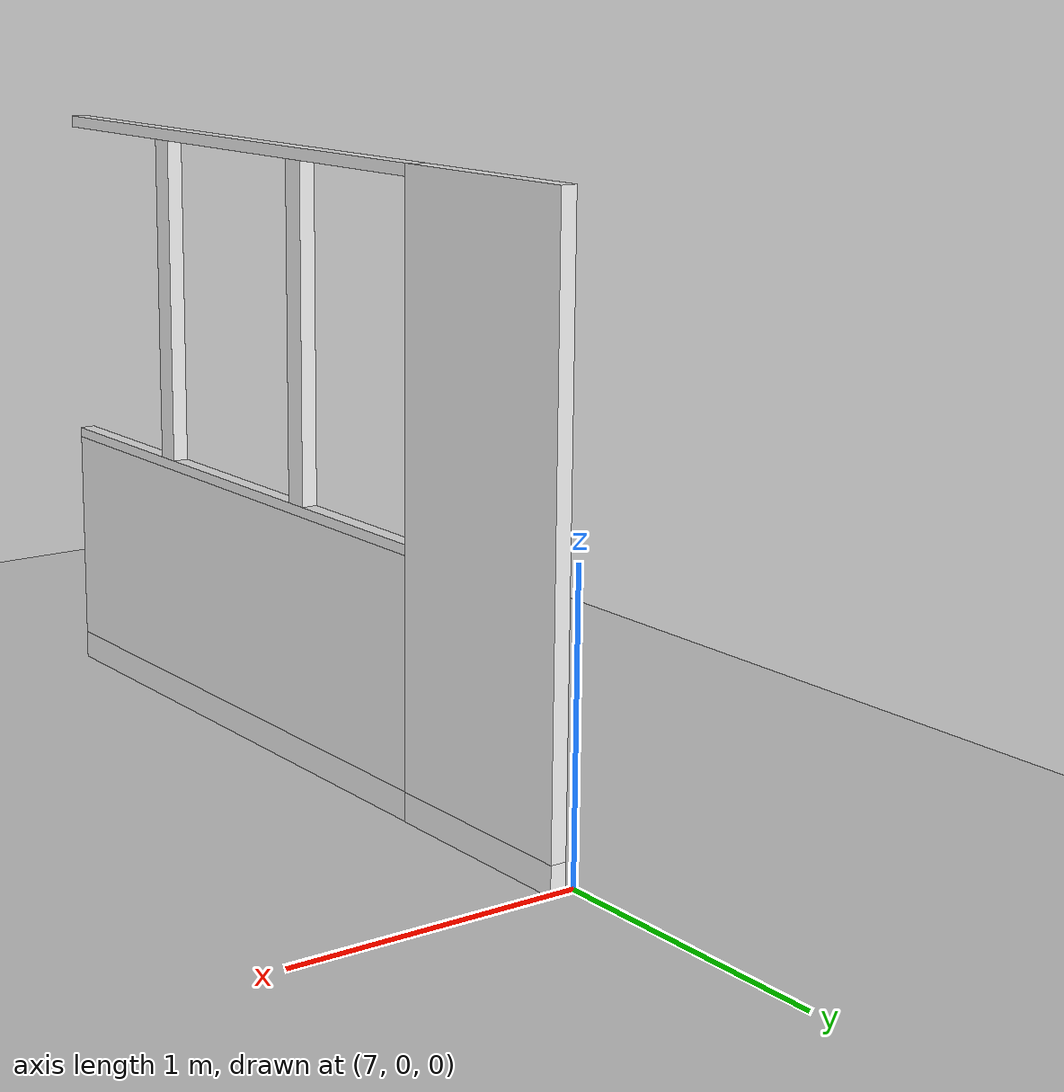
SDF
<sdf version="1.6">
 <world name="default">
  <model name="ground_plane">
   <static>1</static>
   <link name="link">
    <collision name="collision">
     <geometry><plane><normal>0 0 1</normal><size>100 100</size></plane></geometry>
     <surface><friction><ode><mu>100</mu><mu2>50</mu2></ode></friction></surface>
    </collision>
    <visual name="visual">
     <cast_shadows>0</cast_shadows>
     <geometry><plane><normal>0 0 1</normal><size>100 100</size></plane></geometry>
     <material>
      <script><uri>file://media/materials/scripts/gazebo.material</uri><name>Gazebo/Grey</name></script>
     </material>
    </visual>
   </link>
  </model>
  <model name="living_sideboard">
   <link name="link">
    <inertial>
     <mass>10</mass>
     <inertia><ixx>1</ixx><ixy>0</ixy><ixz>0</ixz><iyy>1</iyy><iyz>0</iyz><izz>1</izz></inertia>
    </inertial>
    <visual name="left_board">
     <pose>-0.23 0.01 0.3375 0 -0 0</pose>
     <geometry><box><size>0.42 0.02 0.495</size></box></geometry>
     <material>
      <script><uri>model://base_materials/wood/scripts/wood.material</uri><name>base_materials/wood</name></script>
     </material>
    </visual>
    <collision name="collision_left_board">
     <pose>-0.23 0.01 0.3375 0 -0 0</pose>
     <geometry><box><size>0.42 0.02 0.495</size></box></geometry>
    </collision>
    <visual name="back_board">
     <pose>-0.42 0.575 0.2925 0 -0 0</pose>
     <geometry><box><size>0.02 1.11 0.585</size></box></geometry>
     <material>
      <script><uri>model://base_materials/wood/scripts/wood.material</uri><name>base_materials/wood</name></script>
     </material>
    </visual>
    <collision name="collision_back_board">
     <pose>-0.42 0.575 0.2925 0 -0 0</pose>
     <geometry><box><size>0.02 1.11 0.585</size></box></geometry>
    </collision>
    <visual name="right_board">
     <pose>-0.23 1.14 0.3375 0 -0 0</pose>
     <geometry><box><size>0.42 0.02 0.495</size></box></geometry>
     <material>
      <script><uri>model://base_materials/wood/scripts/wood.material</uri><name>base_materials/wood</name></script>
     </material>
    </visual>
    <collision name="collision_right_board">
     <pose>-0.23 1.14 0.3375 0 -0 0</pose>
     <geometry><box><size>0.42 0.02 0.495</size></box></geometry>
    </collision>
    <visual name="center_vertical_board1">
     <pose>-0.23 0.74 0.3375 0 -0 0</pose>
     <geometry><box><size>0.42 0.02 0.495</size></box></geometry>
     <material>
      <script><uri>model://base_materials/wood/scripts/wood.material</uri><name>base_materials/wood</name></script>
     </material>
    </visual>
    <collision name="collision_center_vertical_board1">
     <pose>-0.23 0.74 0.3375 0 -0 0</pose>
     <geometry><box><size>0.42 0.02 0.495</size></box></geometry>
    </collision>
    <visual name="top_board">
     <pose>-0.22 0.575 0.6 0 -0 0</pose>
     <geometry><box><size>0.44 1.15 0.03</size></box></geometry>
     <material>
      <script><uri>model://base_materials/wood/scripts/wood.material</uri><name>base_materials/wood</name></script>
     </material>
    </visual>
    <collision name="collision_top_board">
     <pose>-0.22 0.575 0.6 0 -0 0</pose>
     <geometry><box><size>0.44 1.15 0.03</size></box></geometry>
    </collision>
    <visual name="bottom_board">
     <pose>-0.23 0.575 0.045 0 -0 0</pose>
     <geometry><box><size>0.42 1.15 0.09</size></box></geometry>
     <material>
      <script><uri>model://base_materials/wood/scripts/wood.material</uri><name>base_materials/wood</name></script>
     </material>
    </visual>
    <collision name="collision_bottom_board">
     <pose>-0.23 0.575 0.045 0 -0 0</pose>
     <geometry><box><size>0.42 1.15 0.09</size></box></geometry>
    </collision>
    <visual name="1st_shelf">
     <pose>-0.225 0.37 0.259 0 -0 0</pose>
     <geometry><box><size>0.36 0.72 0.018</size></box></geometry>
     <material>
      <script><uri>model://base_materials/wood/scripts/wood.material</uri><name>base_materials/wood</name></script>
     </material>
    </visual>
    <collision name="collision_1st_shelf">
     <pose>-0.225 0.37 0.259 0 -0 0</pose>
     <geometry><box><size>0.36 0.72 0.018</size></box></geometry>
    </collision>
    <visual name="2nd_shelf">
     <pose>-0.225 0.37 0.407 0 -0 0</pose>
     <geometry><box><size>0.36 0.72 0.018</size></box></geometry>
     <material>
      <script><uri>model://base_materials/wood/scripts/wood.material</uri><name>base_materials/wood</name></script>
     </material>
    </visual>
    <collision name="collision_2nd_shelf">
     <pose>-0.225 0.37 0.407 0 -0 0</pose>
     <geometry><box><size>0.36 0.72 0.018</size></box></geometry>
    </collision>
    <visual name="1st_drawer">
     <pose>-0.2025 0.95 0.52 0 -0 0</pose>
     <geometry><box><size>0.405 0.38 0.13</size></box></geometry>
     <material>
      <script><uri>model://base_materials/wood/scripts/wood.material</uri><name>base_materials/wood</name></script>
     </material>
    </visual>
    <collision name="collision_1st_drawer">
     <pose>-0.2025 0.95 0.52 0 -0 0</pose>
     <geometry><box><size>0.405 0.38 0.13</size></box></geometry>
    </collision>
    <visual name="1st_drawer_handle_l1">
     <pose>0.015 0.9015 0.535 3.14159 1.57079 3.14159</pose>
     <geometry><cylinder><radius>0.006</radius><length>0.03</length></cylinder></geometry>
     <material>
      <ambient>1 0.84314 0 1</ambient>
      <diffuse>1 0.84314 0 1</diffuse>
      <specular>0.1 0.1 0.1 1</specular>
     </material>
    </visual>
    <collision name="collision_1st_drawer_handle_l1">
     <pose>0.015 0.9015 0.535 3.14159 1.57079 3.14159</pose>
     <geometry><cylinder><radius>0.006</radius><length>0.03</length></cylinder></geometry>
    </collision>
    <visual name="1st_drawer_handle_l2">
     <pose>0.03 0.9015 0.535 0 -0 0</pose>
     <geometry><sphere><radius>0.006</radius></sphere></geometry>
     <material>
      <ambient>1 0.84314 0 1</ambient>
      <diffuse>1 0.84314 0 1</diffuse>
      <specular>0.1 0.1 0.1 1</specular>
     </material>
    </visual>
    <collision name="collision_1st_drawer_handle_l2">
     <pose>0.03 0.9015 0.535 0 -0 0</pose>
     <geometry><sphere><radius>0.006</radius></sphere></geometry>
    </collision>
    <visual name="1st_drawer_handle_r1">
     <pose>0.015 0.9985 0.535 3.14159 1.57079 3.14159</pose>
     <geometry><cylinder><radius>0.006</radius><length>0.03</length></cylinder></geometry>
     <material>
      <ambient>1 0.84314 0 1</ambient>
      <diffuse>1 0.84314 0 1</diffuse>
      <specular>0.1 0.1 0.1 1</specular>
     </material>
    </visual>
    <collision name="collision_1st_drawer_handle_r1">
     <pose>0.015 0.9985 0.535 3.14159 1.57079 3.14159</pose>
     <geometry><cylinder><radius>0.006</radius><length>0.03</length></cylinder></geometry>
    </collision>
    <visual name="1st_drawer_handle_r2">
     <pose>0.03 0.9985 0.535 0 -0 0</pose>
     <geometry><sphere><radius>0.006</radius></sphere></geometry>
     <material>
      <ambient>1 0.84314 0 1</ambient>
      <diffuse>1 0.84314 0 1</diffuse>
      <specular>0.1 0.1 0.1 1</specular>
     </material>
    </visual>
    <collision name="collision_1st_drawer_handle_r2">
     <pose>0.03 0.9985 0.535 0 -0 0</pose>
     <geometry><sphere><radius>0.006</radius></sphere></geometry>
    </collision>
    <visual name="1st_drawer_handle_center">
     <pose>0.03 0.95 0.535 1.5708 -0 0</pose>
     <geometry><cylinder><radius>0.006</radius><length>0.097</length></cylinder></geometry>
     <material>
      <script><uri>model://base_materials/wood/scripts/wood.material</uri><name>base_materials/wood</name></script>
     </material>
    </visual>
    <collision name="collision_1st_drawer_handle_center">
     <pose>0.03 0.95 0.535 1.5708 -0 0</pose>
     <geometry><cylinder><radius>0.006</radius><length>0.097</length></cylinder></geometry>
    </collision>
    <visual name="2nd_drawer">
     <pose>-0.2025 0.95 0.37 0 -0 0</pose>
     <geometry><box><size>0.405 0.38 0.17</size></box></geometry>
     <material>
      <script><uri>model://base_materials/wood/scripts/wood.material</uri><name>base_materials/wood</name></script>
     </material>
    </visual>
    <collision name="collision_2nd_drawer">
     <pose>-0.2025 0.95 0.37 0 -0 0</pose>
     <geometry><box><size>0.405 0.38 0.17</size></box></geometry>
    </collision>
    <visual name="2nd_drawer_handle_l1">
     <pose>0.015 0.9015 0.405 3.14159 1.57079 3.14159</pose>
     <geometry><cylinder><radius>0.006</radius><length>0.03</length></cylinder></geometry>
     <material>
      <ambient>1 0.84314 0 1</ambient>
      <diffuse>1 0.84314 0 1</diffuse>
      <specular>0.1 0.1 0.1 1</specular>
     </material>
    </visual>
    <collision name="collision_2nd_drawer_handle_l1">
     <pose>0.015 0.9015 0.405 3.14159 1.57079 3.14159</pose>
     <geometry><cylinder><radius>0.006</radius><length>0.03</length></cylinder></geometry>
    </collision>
    <visual name="2nd_drawer_handle_l2">
     <pose>0.03 0.9015 0.405 0 -0 0</pose>
     <geometry><sphere><radius>0.006</radius></sphere></geometry>
     <material>
      <ambient>1 0.84314 0 1</ambient>
      <diffuse>1 0.84314 0 1</diffuse>
      <specular>0.1 0.1 0.1 1</specular>
     </material>
    </visual>
    <collision name="collision_2nd_drawer_handle_l2">
     <pose>0.03 0.9015 0.405 0 -0 0</pose>
     <geometry><sphere><radius>0.006</radius></sphere></geometry>
    </collision>
    <visual name="2nd_drawer_handle_r1">
     <pose>0.015 0.9985 0.405 3.14159 1.57079 3.14159</pose>
     <geometry><cylinder><radius>0.006</radius><length>0.03</length></cylinder></geometry>
     <material>
      <ambient>1 0.84314 0 1</ambient>
      <diffuse>1 0.84314 0 1</diffuse>
      <specular>0.1 0.1 0.1 1</specular>
     </material>
    </visual>
    <collision name="collision_2nd_drawer_handle_r1">
     <pose>0.015 0.9985 0.405 3.14159 1.57079 3.14159</pose>
     <geometry><cylinder><radius>0.006</radius><length>0.03</length></cylinder></geometry>
    </collision>
    <visual name="2nd_drawer_handle_r2">
     <pose>0.03 0.9985 0.405 0 -0 0</pose>
     <geometry><sphere><radius>0.006</radius></sphere></geometry>
     <material>
      <ambient>1 0.84314 0 1</ambient>
      <diffuse>1 0.84314 0 1</diffuse>
      <specular>0.1 0.1 0.1 1</specular>
     </material>
    </visual>
    <collision name="collision_2nd_drawer_handle_r2">
     <pose>0.03 0.9985 0.405 0 -0 0</pose>
     <geometry><sphere><radius>0.006</radius></sphere></geometry>
    </collision>
    <visual name="2nd_drawer_handle_center">
     <pose>0.03 0.95 0.405 1.5708 -0 0</pose>
     <geometry><cylinder><radius>0.006</radius><length>0.097</length></cylinder></geometry>
     <material>
      <script><uri>model://base_materials/wood/scripts/wood.material</uri><name>base_materials/wood</name></script>
     </material>
    </visual>
    <collision name="collision_2nd_drawer_handle_center">
     <pose>0.03 0.95 0.405 1.5708 -0 0</pose>
     <geometry><cylinder><radius>0.006</radius><length>0.097</length></cylinder></geometry>
    </collision>
    <visual name="3rd_drawer">
     <pose>-0.2025 0.95 0.18 0 -0 0</pose>
     <geometry><box><size>0.405 0.38 0.21</size></box></geometry>
     <material>
      <script><uri>model://base_materials/wood/scripts/wood.material</uri><name>base_materials/wood</name></script>
     </material>
    </visual>
    <collision name="collision_3rd_drawer">
     <pose>-0.2025 0.95 0.18 0 -0 0</pose>
     <geometry><box><size>0.405 0.38 0.21</size></box></geometry>
    </collision>
    <visual name="3rd_drawer_handle_l1">
     <pose>0.015 0.9015 0.235 3.14159 1.57079 3.14159</pose>
     <geometry><cylinder><radius>0.006</radius><length>0.03</length></cylinder></geometry>
     <material>
      <ambient>1 0.84314 0 1</ambient>
      <diffuse>1 0.84314 0 1</diffuse>
      <specular>0.1 0.1 0.1 1</specular>
     </material>
    </visual>
    <collision name="collision_3rd_drawer_handle_l1">
     <pose>0.015 0.9015 0.235 3.14159 1.57079 3.14159</pose>
     <geometry><cylinder><radius>0.006</radius><length>0.03</length></cylinder></geometry>
    </collision>
    <visual name="3rd_drawer_handle_l2">
     <pose>0.03 0.9015 0.235 0 -0 0</pose>
     <geometry><sphere><radius>0.006</radius></sphere></geometry>
     <material>
      <ambient>1 0.84314 0 1</ambient>
      <diffuse>1 0.84314 0 1</diffuse>
      <specular>0.1 0.1 0.1 1</specular>
     </material>
    </visual>
    <collision name="collision_3rd_drawer_handle_l2">
     <pose>0.03 0.9015 0.235 0 -0 0</pose>
     <geometry><sphere><radius>0.006</radius></sphere></geometry>
    </collision>
    <visual name="3rd_drawer_handle_r1">
     <pose>0.015 0.9985 0.235 3.14159 1.57079 3.14159</pose>
     <geometry><cylinder><radius>0.006</radius><length>0.03</length></cylinder></geometry>
     <material>
      <ambient>1 0.84314 0 1</ambient>
      <diffuse>1 0.84314 0 1</diffuse>
      <specular>0.1 0.1 0.1 1</specular>
     </material>
    </visual>
    <collision name="collision_3rd_drawer_handle_r1">
     <pose>0.015 0.9985 0.235 3.14159 1.57079 3.14159</pose>
     <geometry><cylinder><radius>0.006</radius><length>0.03</length></cylinder></geometry>
    </collision>
    <visual name="3rd_drawer_handle_r2">
     <pose>0.03 0.9985 0.235 0 -0 0</pose>
     <geometry><sphere><radius>0.006</radius></sphere></geometry>
     <material>
      <ambient>1 0.84314 0 1</ambient>
      <diffuse>1 0.84314 0 1</diffuse>
      <specular>0.1 0.1 0.1 1</specular>
     </material>
    </visual>
    <collision name="collision_3rd_drawer_handle_r2">
     <pose>0.03 0.9985 0.235 0 -0 0</pose>
     <geometry><sphere><radius>0.006</radius></sphere></geometry>
    </collision>
    <visual name="3rd_drawer_handle_center">
     <pose>0.03 0.95 0.235 1.5708 -0 0</pose>
     <geometry><cylinder><radius>0.006</radius><length>0.097</length></cylinder></geometry>
     <material>
      <script><uri>model://base_materials/wood/scripts/wood.material</uri><name>base_materials/wood</name></script>
     </material>
    </visual>
    <collision name="collision_3rd_drawer_handle_center">
     <pose>0.03 0.95 0.235 1.5708 -0 0</pose>
     <geometry><cylinder><radius>0.006</radius><length>0.097</length></cylinder></geometry>
    </collision>
    <visual name="left_door_left_frame">
     <pose>-0.01 0.025 0.3275 0 -0 0</pose>
     <geometry><box><size>0.02 0.05 0.405</size></box></geometry>
     <material>
      <script><uri>model://base_materials/wood/scripts/wood.material</uri><name>base_materials/wood</name></script>
     </material>
    </visual>
    <collision name="collision_left_door_left_frame">
     <pose>-0.01 0.025 0.3275 0 -0 0</pose>
     <geometry><box><size>0.02 0.05 0.405</size></box></geometry>
    </collision>
    <visual name="left_door_right_frame">
     <pose>-0.01 0.355 0.3275 0 -0 0</pose>
     <geometry><box><size>0.02 0.05 0.405</size></box></geometry>
     <material>
      <script><uri>model://base_materials/wood/scripts/wood.material</uri><name>base_materials/wood</name></script>
     </material>
    </visual>
    <collision name="collision_left_door_right_frame">
     <pose>-0.01 0.355 0.3275 0 -0 0</pose>
     <geometry><box><size>0.02 0.05 0.405</size></box></geometry>
    </collision>
    <visual name="left_door_handle_top1">
     <pose>0.015 0.355 0.4475 3.14159 1.57079 3.14159</pose>
     <geometry><cylinder><radius>0.006</radius><length>0.03</length></cylinder></geometry>
     <material>
      <ambient>1 0.84314 0 1</ambient>
      <diffuse>1 0.84314 0 1</diffuse>
      <specular>0.1 0.1 0.1 1</specular>
     </material>
    </visual>
    <collision name="collision_left_door_handle_top1">
     <pose>0.015 0.355 0.4475 3.14159 1.57079 3.14159</pose>
     <geometry><cylinder><radius>0.006</radius><length>0.03</length></cylinder></geometry>
    </collision>
    <visual name="left_door_handle_top2">
     <pose>0.03 0.355 0.4475 0 -0 0</pose>
     <geometry><sphere><radius>0.006</radius></sphere></geometry>
     <material>
      <ambient>1 0.84314 0 1</ambient>
      <diffuse>1 0.84314 0 1</diffuse>
      <specular>0.1 0.1 0.1 1</specular>
     </material>
    </visual>
    <collision name="collision_left_door_handle_top2">
     <pose>0.03 0.355 0.4475 0 -0 0</pose>
     <geometry><sphere><radius>0.006</radius></sphere></geometry>
    </collision>
    <visual name="left_door_handle_bottom1">
     <pose>0.015 0.355 0.3505 3.14159 1.57079 3.14159</pose>
     <geometry><cylinder><radius>0.006</radius><length>0.03</length></cylinder></geometry>
     <material>
      <ambient>1 0.84314 0 1</ambient>
      <diffuse>1 0.84314 0 1</diffuse>
      <specular>0.1 0.1 0.1 1</specular>
     </material>
    </visual>
    <collision name="collision_left_door_handle_bottom1">
     <pose>0.015 0.355 0.3505 3.14159 1.57079 3.14159</pose>
     <geometry><cylinder><radius>0.006</radius><length>0.03</length></cylinder></geometry>
    </collision>
    <visual name="left_door_handle_bottom2">
     <pose>0.03 0.355 0.3505 0 -0 0</pose>
     <geometry><sphere><radius>0.006</radius></sphere></geometry>
     <material>
      <ambient>1 0.84314 0 1</ambient>
      <diffuse>1 0.84314 0 1</diffuse>
      <specular>0.1 0.1 0.1 1</specular>
     </material>
    </visual>
    <collision name="collision_left_door_handle_bottom2">
     <pose>0.03 0.355 0.3505 0 -0 0</pose>
     <geometry><sphere><radius>0.006</radius></sphere></geometry>
    </collision>
    <visual name="left_door_handle_center">
     <pose>0.03 0.355 0.399 0 -0 0</pose>
     <geometry><cylinder><radius>0.006</radius><length>0.097</length></cylinder></geometry>
     <material>
      <script><uri>model://base_materials/wood/scripts/wood.material</uri><name>base_materials/wood</name></script>
     </material>
    </visual>
    <collision name="collision_left_door_handle_center">
     <pose>0.03 0.355 0.399 0 -0 0</pose>
     <geometry><cylinder><radius>0.006</radius><length>0.097</length></cylinder></geometry>
    </collision>
    <visual name="left_door_top_frame">
     <pose>-0.01 0.19 0.5575 0 -0 0</pose>
     <geometry><box><size>0.02 0.38 0.055</size></box></geometry>
     <material>
      <script><uri>model://base_materials/wood/scripts/wood.material</uri><name>base_materials/wood</name></script>
     </material>
    </visual>
    <collision name="collision_left_door_top_frame">
     <pose>-0.01 0.19 0.5575 0 -0 0</pose>
     <geometry><box><size>0.02 0.38 0.055</size></box></geometry>
    </collision>
    <visual name="left_door_bottom_frame">
     <pose>-0.01 0.19 0.1 0 -0 0</pose>
     <geometry><box><size>0.02 0.38 0.05</size></box></geometry>
     <material>
      <script><uri>model://base_materials/wood/scripts/wood.material</uri><name>base_materials/wood</name></script>
     </material>
    </visual>
    <collision name="collision_left_door_bottom_frame">
     <pose>-0.01 0.19 0.1 0 -0 0</pose>
     <geometry><box><size>0.02 0.38 0.05</size></box></geometry>
    </collision>
    <visual name="right_door_left_frame">
     <pose>-0.01 0.405 0.3275 0 -0 0</pose>
     <geometry><box><size>0.02 0.05 0.405</size></box></geometry>
     <material>
      <script><uri>model://base_materials/wood/scripts/wood.material</uri><name>base_materials/wood</name></script>
     </material>
    </visual>
    <collision name="collision_right_door_left_frame">
     <pose>-0.01 0.405 0.3275 0 -0 0</pose>
     <geometry><box><size>0.02 0.05 0.405</size></box></geometry>
    </collision>
    <visual name="right_door_right_frame">
     <pose>-0.01 0.735 0.3275 0 -0 0</pose>
     <geometry><box><size>0.02 0.05 0.405</size></box></geometry>
     <material>
      <script><uri>model://base_materials/wood/scripts/wood.material</uri><name>base_materials/wood</name></script>
     </material>
    </visual>
    <collision name="collision_right_door_right_frame">
     <pose>-0.01 0.735 0.3275 0 -0 0</pose>
     <geometry><box><size>0.02 0.05 0.405</size></box></geometry>
    </collision>
    <visual name="right_door_top_frame">
     <pose>-0.01 0.57 0.5575 0 -0 0</pose>
     <geometry><box><size>0.02 0.38 0.055</size></box></geometry>
     <material>
      <script><uri>model://base_materials/wood/scripts/wood.material</uri><name>base_materials/wood</name></script>
     </material>
    </visual>
    <collision name="collision_right_door_top_frame">
     <pose>-0.01 0.57 0.5575 0 -0 0</pose>
     <geometry><box><size>0.02 0.38 0.055</size></box></geometry>
    </collision>
    <visual name="right_door_bottom_frame">
     <pose>-0.01 0.57 0.1 0 -0 0</pose>
     <geometry><box><size>0.02 0.38 0.05</size></box></geometry>
     <material>
      <script><uri>model://base_materials/wood/scripts/wood.material</uri><name>base_materials/wood</name></script>
     </material>
    </visual>
    <collision name="collision_right_door_bottom_frame">
     <pose>-0.01 0.57 0.1 0 -0 0</pose>
     <geometry><box><size>0.02 0.38 0.05</size></box></geometry>
    </collision>
    <visual name="right_door_handle_top1">
     <pose>0.015 0.405 0.4475 3.14159 1.57079 3.14159</pose>
     <geometry><cylinder><radius>0.006</radius><length>0.03</length></cylinder></geometry>
     <material>
      <ambient>1 0.84314 0 1</ambient>
      <diffuse>1 0.84314 0 1</diffuse>
      <specular>0.1 0.1 0.1 1</specular>
     </material>
    </visual>
    <collision name="collision_right_door_handle_top1">
     <pose>0.015 0.405 0.4475 3.14159 1.57079 3.14159</pose>
     <geometry><cylinder><radius>0.006</radius><length>0.03</length></cylinder></geometry>
    </collision>
    <visual name="right_door_handle_top2">
     <pose>0.03 0.405 0.4475 0 -0 0</pose>
     <geometry><sphere><radius>0.006</radius></sphere></geometry>
     <material>
      <ambient>1 0.84314 0 1</ambient>
      <diffuse>1 0.84314 0 1</diffuse>
      <specular>0.1 0.1 0.1 1</specular>
     </material>
    </visual>
    <collision name="collision_right_door_handle_top2">
     <pose>0.03 0.405 0.4475 0 -0 0</pose>
     <geometry><sphere><radius>0.006</radius></sphere></geometry>
    </collision>
    <visual name="right_door_handle_bottom1">
     <pose>0.015 0.405 0.3505 3.14159 1.57079 3.14159</pose>
     <geometry><cylinder><radius>0.006</radius><length>0.03</length></cylinder></geometry>
     <material>
      <ambient>1 0.84314 0 1</ambient>
      <diffuse>1 0.84314 0 1</diffuse>
      <specular>0.1 0.1 0.1 1</specular>
     </material>
    </visual>
    <collision name="collision_right_door_handle_bottom1">
     <pose>0.015 0.405 0.3505 3.14159 1.57079 3.14159</pose>
     <geometry><cylinder><radius>0.006</radius><length>0.03</length></cylinder></geometry>
    </collision>
    <visual name="right_door_handle_bottom2">
     <pose>0.03 0.405 0.3505 0 -0 0</pose>
     <geometry><sphere><radius>0.006</radius></sphere></geometry>
     <material>
      <ambient>1 0.84314 0 1</ambient>
      <diffuse>1 0.84314 0 1</diffuse>
      <specular>0.1 0.1 0.1 1</specular>
     </material>
    </visual>
    <collision name="collision_right_door_handle_bottom2">
     <pose>0.03 0.405 0.3505 0 -0 0</pose>
     <geometry><sphere><radius>0.006</radius></sphere></geometry>
    </collision>
    <visual name="right_door_handle_center">
     <pose>0.03 0.405 0.399 0 -0 0</pose>
     <geometry><cylinder><radius>0.006</radius><length>0.097</length></cylinder></geometry>
     <material>
      <script><uri>model://base_materials/wood/scripts/wood.material</uri><name>base_materials/wood</name></script>
     </material>
    </visual>
    <collision name="collision_right_door_handle_center">
     <pose>0.03 0.4 0.399 0 -0 0</pose>
     <geometry><cylinder><radius>0.006</radius><length>0.097</length></cylinder></geometry>
    </collision>
    <velocity_decay><linear>0</linear><angular>0</angular></velocity_decay>
   </link>
   <static>1</static>
   <pose>6.55431 -1.39864 0 0 0 -3.12984</pose>
  </model>
  <model name="half_glass_wall_bedroom">
   <link name="link">
    <pose>0.152727 0.374003 0 0 -0 0</pose>
    <inertial>
     <mass>123.435</mass>
     <inertia>
      <ixx>50.8426</ixx>
      <ixy>0</ixy>
      <ixz>0</ixz>
      <iyy>0.0475739</iyy>
      <iyz>0</iyz>
      <izz>50.8573</izz>
     </inertia>
    </inertial>
    <velocity_decay><linear>0</linear><angular>0</angular></velocity_decay>
    <visual name="bottom_frame">
     <pose>0 0 0.05 0 -0 0</pose>
     <geometry><box><size>0.055 2.22288 0.1</size></box></geometry>
     <material>
      <script><uri>model://base_materials/color/scripts</uri><name>hsr_color/white</name></script>
      <ambient>1 1 1 1</ambient>
      <diffuse>0.5 0.5 0.5 1</diffuse>
      <specular>0 0 0 1</specular>
      <emissive>0 0 0 1</emissive>
     </material>
    </visual>
    <visual name="center_frame">
     <pose>0 0 0.8925 0 -0 0</pose>
     <geometry><box><size>0.055 2.22288 0.035</size></box></geometry>
     <material>
      <script><uri>model://base_materials/color/scripts</uri><name>hsr_color/white</name></script>
      <ambient>1 1 1 1</ambient>
      <diffuse>0.5 0.5 0.5 1</diffuse>
      <specular>0 0 0 1</specular>
      <emissive>0 0 0 1</emissive>
     </material>
    </visual>
    <visual name="wall">
     <pose>0 0 0.4875 0 -0 0</pose>
     <geometry><box><size>0.055 2.22288 0.775</size></box></geometry>
     <material>
      <script>
       <uri>model://base_materials/wall/scripts</uri>
       <uri>model://base_materials/wall/textures</uri>
       <name>wall/white_noise</name>
      </script>
      <ambient>1 1 1 1</ambient>
      <diffuse>0.5 0.5 0.5 1</diffuse>
      <specular>0 0 0 1</specular>
      <emissive>0 0 0 1</emissive>
     </material>
    </visual>
    <visual name="left_frame">
     <pose>0 -0.4325 1.48 0 -0 0</pose>
     <geometry><box><size>0.055 0.085833 1.14</size></box></geometry>
     <material>
      <script><uri>model://base_materials/color/scripts</uri><name>hsr_color/white</name></script>
      <ambient>1 1 1 1</ambient>
      <diffuse>0.5 0.5 0.5 1</diffuse>
      <specular>0 0 0 1</specular>
      <emissive>0 0 0 1</emissive>
     </material>
    </visual>
    <visual name="right_frame">
     <pose>0 0.4325 1.48 0 -0 0</pose>
     <geometry><box><size>0.055 0.085833 1.14</size></box></geometry>
     <material>
      <script><uri>model://base_materials/color/scripts</uri><name>hsr_color/white</name></script>
      <ambient>1 1 1 1</ambient>
      <diffuse>0.5 0.5 0.5 1</diffuse>
      <specular>0 0 0 1</specular>
      <emissive>0 0 0 1</emissive>
     </material>
    </visual>
    <visual name="top_frame">
     <pose>0 0 2.07 0 -0 0</pose>
     <geometry><box><size>0.055 2.22288 0.04</size></box></geometry>
     <material>
      <script><uri>model://base_materials/color/scripts</uri><name>hsr_color/white</name></script>
      <ambient>1 1 1 1</ambient>
      <diffuse>0.5 0.5 0.5 1</diffuse>
      <specular>0 0 0 1</specular>
      <emissive>0 0 0 1</emissive>
     </material>
    </visual>
    <collision name="collision_bottom_frame">
     <pose>0 0 0.05 0 -0 0</pose>
     <geometry><box><size>0.055 2.22288 0.1</size></box></geometry>
     <surface>
      <friction>
       <ode><mu>1</mu><mu2>1</mu2><fdir1>0 0 0</fdir1><slip1>0</slip1><slip2>0</slip2></ode>
       <torsional>
        <coefficient>1</coefficient>
        <patch_radius>0</patch_radius>
        <surface_radius>0</surface_radius>
        <use_patch_radius>1</use_patch_radius>
        <ode><slip>0</slip></ode>
       </torsional>
      </friction>
      <bounce><restitution_coefficient>0</restitution_coefficient><threshold>1e+06</threshold></bounce>
      <contact>
       <collide_without_contact>0</collide_without_contact>
       <collide_without_contact_bitmask>1</collide_without_contact_bitmask>
       <collide_bitmask>1</collide_bitmask>
       <ode>
        <soft_cfm>0</soft_cfm>
        <soft_erp>0.2</soft_erp>
        <kp>1e+13</kp>
        <kd>1</kd>
        <max_vel>0.01</max_vel>
        <min_depth>0</min_depth>
       </ode>
       <bullet>
        <split_impulse>1</split_impulse>
        <split_impulse_penetration_threshold>-0.01</split_impulse_penetration_threshold>
        <soft_cfm>0</soft_cfm>
        <soft_erp>0.2</soft_erp>
        <kp>1e+13</kp>
        <kd>1</kd>
       </bullet>
      </contact>
     </surface>
    </collision>
    <collision name="collision_wall">
     <pose>0 0 0.4875 0 -0 0</pose>
     <geometry><box><size>0.055 2.22288 0.775</size></box></geometry>
     <surface>
      <friction>
       <ode><mu>1</mu><mu2>1</mu2><fdir1>0 0 0</fdir1><slip1>0</slip1><slip2>0</slip2></ode>
       <torsional>
        <coefficient>1</coefficient>
        <patch_radius>0</patch_radius>
        <surface_radius>0</surface_radius>
        <use_patch_radius>1</use_patch_radius>
        <ode><slip>0</slip></ode>
       </torsional>
      </friction>
      <bounce><restitution_coefficient>0</restitution_coefficient><threshold>1e+06</threshold></bounce>
      <contact>
       <collide_without_contact>0</collide_without_contact>
       <collide_without_contact_bitmask>1</collide_without_contact_bitmask>
       <collide_bitmask>1</collide_bitmask>
       <ode>
        <soft_cfm>0</soft_cfm>
        <soft_erp>0.2</soft_erp>
        <kp>1e+13</kp>
        <kd>1</kd>
        <max_vel>0.01</max_vel>
        <min_depth>0</min_depth>
       </ode>
       <bullet>
        <split_impulse>1</split_impulse>
        <split_impulse_penetration_threshold>-0.01</split_impulse_penetration_threshold>
        <soft_cfm>0</soft_cfm>
        <soft_erp>0.2</soft_erp>
        <kp>1e+13</kp>
        <kd>1</kd>
       </bullet>
      </contact>
     </surface>
    </collision>
    <collision name="collision_center_frame">
     <pose>0 0 0.8925 0 -0 0</pose>
     <geometry><box><size>0.055 2.22288 0.035</size></box></geometry>
     <surface>
      <friction>
       <ode><mu>1</mu><mu2>1</mu2><fdir1>0 0 0</fdir1><slip1>0</slip1><slip2>0</slip2></ode>
       <torsional>
        <coefficient>1</coefficient>
        <patch_radius>0</patch_radius>
        <surface_radius>0</surface_radius>
        <use_patch_radius>1</use_patch_radius>
        <ode><slip>0</slip></ode>
       </torsional>
      </friction>
      <bounce><restitution_coefficient>0</restitution_coefficient><threshold>1e+06</threshold></bounce>
      <contact>
       <collide_without_contact>0</collide_without_contact>
       <collide_without_contact_bitmask>1</collide_without_contact_bitmask>
       <collide_bitmask>1</collide_bitmask>
       <ode>
        <soft_cfm>0</soft_cfm>
        <soft_erp>0.2</soft_erp>
        <kp>1e+13</kp>
        <kd>1</kd>
        <max_vel>0.01</max_vel>
        <min_depth>0</min_depth>
       </ode>
       <bullet>
        <split_impulse>1</split_impulse>
        <split_impulse_penetration_threshold>-0.01</split_impulse_penetration_threshold>
        <soft_cfm>0</soft_cfm>
        <soft_erp>0.2</soft_erp>
        <kp>1e+13</kp>
        <kd>1</kd>
       </bullet>
      </contact>
     </surface>
    </collision>
    <collision name="collision_right_frame">
     <pose>0 0.4325 1.48 0 -0 0</pose>
     <geometry><box><size>0.055 0.085833 1.14</size></box></geometry>
     <surface>
      <friction>
       <ode><mu>1</mu><mu2>1</mu2><fdir1>0 0 0</fdir1><slip1>0</slip1><slip2>0</slip2></ode>
       <torsional>
        <coefficient>1</coefficient>
        <patch_radius>0</patch_radius>
        <surface_radius>0</surface_radius>
        <use_patch_radius>1</use_patch_radius>
        <ode><slip>0</slip></ode>
       </torsional>
      </friction>
      <bounce><restitution_coefficient>0</restitution_coefficient><threshold>1e+06</threshold></bounce>
      <contact>
       <collide_without_contact>0</collide_without_contact>
       <collide_without_contact_bitmask>1</collide_without_contact_bitmask>
       <collide_bitmask>1</collide_bitmask>
       <ode>
        <soft_cfm>0</soft_cfm>
        <soft_erp>0.2</soft_erp>
        <kp>1e+13</kp>
        <kd>1</kd>
        <max_vel>0.01</max_vel>
        <min_depth>0</min_depth>
       </ode>
       <bullet>
        <split_impulse>1</split_impulse>
        <split_impulse_penetration_threshold>-0.01</split_impulse_penetration_threshold>
        <soft_cfm>0</soft_cfm>
        <soft_erp>0.2</soft_erp>
        <kp>1e+13</kp>
        <kd>1</kd>
       </bullet>
      </contact>
     </surface>
    </collision>
    <collision name="collision_left_frame">
     <pose>0 -0.4325 1.48 0 -0 0</pose>
     <geometry><box><size>0.055 0.085833 1.14</size></box></geometry>
     <surface>
      <friction>
       <ode><mu>1</mu><mu2>1</mu2><fdir1>0 0 0</fdir1><slip1>0</slip1><slip2>0</slip2></ode>
       <torsional>
        <coefficient>1</coefficient>
        <patch_radius>0</patch_radius>
        <surface_radius>0</surface_radius>
        <use_patch_radius>1</use_patch_radius>
        <ode><slip>0</slip></ode>
       </torsional>
      </friction>
      <bounce><restitution_coefficient>0</restitution_coefficient><threshold>1e+06</threshold></bounce>
      <contact>
       <collide_without_contact>0</collide_without_contact>
       <collide_without_contact_bitmask>1</collide_without_contact_bitmask>
       <collide_bitmask>1</collide_bitmask>
       <ode>
        <soft_cfm>0</soft_cfm>
        <soft_erp>0.2</soft_erp>
        <kp>1e+13</kp>
        <kd>1</kd>
        <max_vel>0.01</max_vel>
        <min_depth>0</min_depth>
       </ode>
       <bullet>
        <split_impulse>1</split_impulse>
        <split_impulse_penetration_threshold>-0.01</split_impulse_penetration_threshold>
        <soft_cfm>0</soft_cfm>
        <soft_erp>0.2</soft_erp>
        <kp>1e+13</kp>
        <kd>1</kd>
       </bullet>
      </contact>
     </surface>
    </collision>
    <collision name="collision_top_frame">
     <pose>0 0 2.07 0 -0 0</pose>
     <geometry><box><size>0.055 2.22288 0.04</size></box></geometry>
     <surface>
      <friction>
       <ode><mu>1</mu><mu2>1</mu2><fdir1>0 0 0</fdir1><slip1>0</slip1><slip2>0</slip2></ode>
       <torsional>
        <coefficient>1</coefficient>
        <patch_radius>0</patch_radius>
        <surface_radius>0</surface_radius>
        <use_patch_radius>1</use_patch_radius>
        <ode><slip>0</slip></ode>
       </torsional>
      </friction>
      <bounce><restitution_coefficient>0</restitution_coefficient><threshold>1e+06</threshold></bounce>
      <contact>
       <collide_without_contact>0</collide_without_contact>
       <collide_without_contact_bitmask>1</collide_without_contact_bitmask>
       <collide_bitmask>1</collide_bitmask>
       <ode>
        <soft_cfm>0</soft_cfm>
        <soft_erp>0.2</soft_erp>
        <kp>1e+13</kp>
        <kd>1</kd>
        <max_vel>0.01</max_vel>
        <min_depth>0</min_depth>
       </ode>
       <bullet>
        <split_impulse>1</split_impulse>
        <split_impulse_penetration_threshold>-0.01</split_impulse_penetration_threshold>
        <soft_cfm>0</soft_cfm>
        <soft_erp>0.2</soft_erp>
        <kp>1e+13</kp>
        <kd>1</kd>
       </bullet>
      </contact>
     </surface>
    </collision>
   </link>
   <static>1</static>
   <pose>6.91192 -2.19847 0 0 -0 0</pose>
  </model>
  <model name="full_wall_55_1300_2090_0_0">
   <link name="link">
    <pose>0 0.127869 0 0 -0 0</pose>
    <inertial>
     <mass>34.4639</mass>
     <inertia><ixx>13.0244</ixx><ixy>0</ixy><ixz>0</ixz><iyy>11.382</iyy><iyz>0</iyz><izz>1.65976</izz></inertia>
    </inertial>
    <velocity_decay><linear>0</linear><angular>0</angular></velocity_decay>
    <visual name="wall">
     <pose>0 0 1.095 0 -0 0</pose>
     <geometry><box><size>0.055 0.758213 1.99</size></box></geometry>
     <material>
      <script>
       <uri>model://base_materials/wall/scripts</uri>
       <uri>model://base_materials/wall/textures</uri>
       <name>wall/white_noise</name>
      </script>
      <ambient>1 1 1 1</ambient>
      <diffuse>0.5 0.5 0.5 1</diffuse>
      <specular>0 0 0 1</specular>
      <emissive>0 0 0 1</emissive>
     </material>
    </visual>
    <visual name="bottom_frame">
     <pose>0 0 0.05 0 -0 0</pose>
     <geometry><box><size>0.055 0.758213 0.1</size></box></geometry>
     <material>
      <script><uri>model://base_materials/color/scripts</uri><name>hsr_color/white</name></script>
      <ambient>1 1 1 1</ambient>
      <diffuse>0.5 0.5 0.5 1</diffuse>
      <specular>0 0 0 1</specular>
      <emissive>0 0 0 1</emissive>
     </material>
    </visual>
    <collision name="collision_bottom_frame">
     <pose>0 0 0.05 0 -0 0</pose>
     <geometry><box><size>0.055 0.758213 0.1</size></box></geometry>
     <surface>
      <friction>
       <ode><mu>1</mu><mu2>1</mu2><fdir1>0 0 0</fdir1><slip1>0</slip1><slip2>0</slip2></ode>
       <torsional>
        <coefficient>1</coefficient>
        <patch_radius>0</patch_radius>
        <surface_radius>0</surface_radius>
        <use_patch_radius>1</use_patch_radius>
        <ode><slip>0</slip></ode>
       </torsional>
      </friction>
      <bounce><restitution_coefficient>0</restitution_coefficient><threshold>1e+06</threshold></bounce>
      <contact>
       <collide_without_contact>0</collide_without_contact>
       <collide_without_contact_bitmask>1</collide_without_contact_bitmask>
       <collide_bitmask>1</collide_bitmask>
       <ode>
        <soft_cfm>0</soft_cfm>
        <soft_erp>0.2</soft_erp>
        <kp>1e+13</kp>
        <kd>1</kd>
        <max_vel>0.01</max_vel>
        <min_depth>0</min_depth>
       </ode>
       <bullet>
        <split_impulse>1</split_impulse>
        <split_impulse_penetration_threshold>-0.01</split_impulse_penetration_threshold>
        <soft_cfm>0</soft_cfm>
        <soft_erp>0.2</soft_erp>
        <kp>1e+13</kp>
        <kd>1</kd>
       </bullet>
      </contact>
     </surface>
    </collision>
    <collision name="collision_wall">
     <pose>0 0 1.095 0 -0 0</pose>
     <geometry><box><size>0.055 0.758213 1.99</size></box></geometry>
     <surface>
      <friction>
       <ode><mu>1</mu><mu2>1</mu2><fdir1>0 0 0</fdir1><slip1>0</slip1><slip2>0</slip2></ode>
       <torsional>
        <coefficient>1</coefficient>
        <patch_radius>0</patch_radius>
        <surface_radius>0</surface_radius>
        <use_patch_radius>1</use_patch_radius>
        <ode><slip>0</slip></ode>
       </torsional>
      </friction>
      <bounce><restitution_coefficient>0</restitution_coefficient><threshold>1e+06</threshold></bounce>
      <contact>
       <collide_without_contact>0</collide_without_contact>
       <collide_without_contact_bitmask>1</collide_without_contact_bitmask>
       <collide_bitmask>1</collide_bitmask>
       <ode>
        <soft_cfm>0</soft_cfm>
        <soft_erp>0.2</soft_erp>
        <kp>1e+13</kp>
        <kd>1</kd>
        <max_vel>0.01</max_vel>
        <min_depth>0</min_depth>
       </ode>
       <bullet>
        <split_impulse>1</split_impulse>
        <split_impulse_penetration_threshold>-0.01</split_impulse_penetration_threshold>
        <soft_cfm>0</soft_cfm>
        <soft_erp>0.2</soft_erp>
        <kp>1e+13</kp>
        <kd>1</kd>
       </bullet>
      </contact>
     </surface>
    </collision>
   </link>
   <static>1</static>
   <pose>7.0666 -0.49844 0 0 -0 0</pose>
  </model>
 </world>
</sdf>
